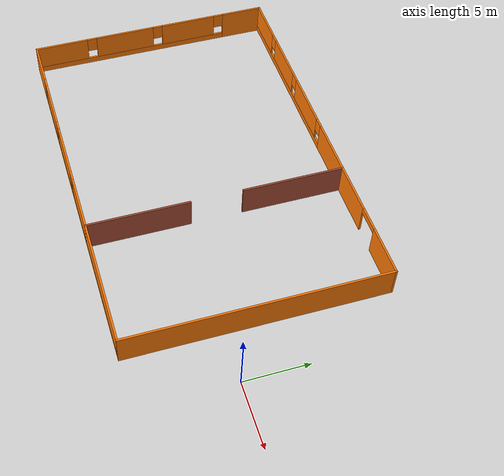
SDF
<?xml version='1.0'?>
<sdf version='1.6'>
  <model name='building'>
    <pose frame=''>-18.8522 2.56894 0 0 -0 0</pose>
    <link name='Wall_10'>
      <collision name='Wall_10_Collision'>
        <geometry>
          <box>
            <size>20 0.15 2.5</size>
          </box>
        </geometry>
        <pose frame=''>0 0 1.25 0 -0 0</pose>
      </collision>
      <visual name='Wall_10_Visual'>
        <pose frame=''>0 0 1.25 0 -0 0</pose>
        <geometry>
          <box>
            <size>20 0.15 2.5</size>
          </box>
        </geometry>
        <material>
          <script>
            <uri>file://media/materials/scripts/gazebo.material</uri>
            <name>Gazebo/Grey</name>
          </script>
          <ambient>0.996078 0.47451 0.0196078 1</ambient>
        </material>
        <meta>
          <layer>0</layer>
        </meta>
      </visual>
      <pose frame=''>14.9252 5.7e-05 0 0 -0 1.5708</pose>
    </link>
    <link name='Wall_11'>
      <pose frame=''>0.000193 9.92506 0 0 -0 3.14159</pose>
      <visual name='Wall_11_Visual_0'>
        <pose frame=''>-13.0218 0 1.25 0 -0 0</pose>
        <geometry>
          <box>
            <size>3.95643 0.15 2.5</size>
          </box>
        </geometry>
        <material>
          <script>
            <uri>file://media/materials/scripts/gazebo.material</uri>
            <name>Gazebo/Grey</name>
          </script>
          <ambient>0.996078 0.47451 0.0196078 1</ambient>
        </material>
        <meta>
          <layer>0</layer>
        </meta>
      </visual>
      <collision name='Wall_11_Collision_0'>
        <geometry>
          <box>
            <size>3.95643 0.15 2.5</size>
          </box>
        </geometry>
        <pose frame=''>-13.0218 0 1.25 0 -0 0</pose>
      </collision>
      <visual name='Wall_11_Visual_1'>
        <pose frame=''>-4.68577 0 1.25 0 -0 0</pose>
        <geometry>
          <box>
            <size>8.71559 0.15 2.5</size>
          </box>
        </geometry>
        <material>
          <script>
            <uri>file://media/materials/scripts/gazebo.material</uri>
            <name>Gazebo/Grey</name>
          </script>
          <ambient>0.996078 0.47451 0.0196078 1</ambient>
        </material>
        <meta>
          <layer>0</layer>
        </meta>
      </visual>
      <collision name='Wall_11_Collision_1'>
        <geometry>
          <box>
            <size>8.71559 0.15 2.5</size>
          </box>
        </geometry>
        <pose frame=''>-4.68577 0 1.25 0 -0 0</pose>
      </collision>
      <visual name='Wall_11_Visual_2'>
        <pose frame=''>7.33601 0 0.25 0 -0 0</pose>
        <geometry>
          <box>
            <size>15.328 0.15 0.5</size>
          </box>
        </geometry>
        <material>
          <script>
            <uri>file://media/materials/scripts/gazebo.material</uri>
            <name>Gazebo/Grey</name>
          </script>
          <ambient>0.996078 0.47451 0.0196078 1</ambient>
        </material>
        <meta>
          <layer>0</layer>
        </meta>
      </visual>
      <collision name='Wall_11_Collision_2'>
        <geometry>
          <box>
            <size>15.328 0.15 0.5</size>
          </box>
        </geometry>
        <pose frame=''>7.33601 0 0.25 0 -0 0</pose>
      </collision>
      <visual name='Wall_11_Visual_3'>
        <pose frame=''>2.81614 0 1.5 0 -0 0</pose>
        <geometry>
          <box>
            <size>4.68825 0.15 2</size>
          </box>
        </geometry>
        <material>
          <script>
            <uri>file://media/materials/scripts/gazebo.material</uri>
            <name>Gazebo/Grey</name>
          </script>
          <ambient>0.996078 0.47451 0.0196078 1</ambient>
        </material>
        <meta>
          <layer>0</layer>
        </meta>
      </visual>
      <collision name='Wall_11_Collision_3'>
        <geometry>
          <box>
            <size>4.68825 0.15 2</size>
          </box>
        </geometry>
        <pose frame=''>2.81614 0 1.5 0 -0 0</pose>
      </collision>
      <visual name='Wall_11_Visual_4'>
        <pose frame=''>8.11613 0 1.5 0 -0 0</pose>
        <geometry>
          <box>
            <size>4.31173 0.15 2</size>
          </box>
        </geometry>
        <material>
          <script>
            <uri>file://media/materials/scripts/gazebo.material</uri>
            <name>Gazebo/Grey</name>
          </script>
          <ambient>0.996078 0.47451 0.0196078 1</ambient>
        </material>
        <meta>
          <layer>0</layer>
        </meta>
      </visual>
      <collision name='Wall_11_Collision_4'>
        <geometry>
          <box>
            <size>4.31173 0.15 2</size>
          </box>
        </geometry>
        <pose frame=''>8.11613 0 1.5 0 -0 0</pose>
      </collision>
      <visual name='Wall_11_Visual_5'>
        <pose frame=''>13.036 0 1.5 0 -0 0</pose>
        <geometry>
          <box>
            <size>3.928 0.15 2</size>
          </box>
        </geometry>
        <material>
          <script>
            <uri>file://media/materials/scripts/gazebo.material</uri>
            <name>Gazebo/Grey</name>
          </script>
          <ambient>0.996078 0.47451 0.0196078 1</ambient>
        </material>
        <meta>
          <layer>0</layer>
        </meta>
      </visual>
      <collision name='Wall_11_Collision_5'>
        <geometry>
          <box>
            <size>3.928 0.15 2</size>
          </box>
        </geometry>
        <pose frame=''>13.036 0 1.5 0 -0 0</pose>
      </collision>
      <visual name='Wall_11_Visual_6'>
        <pose frame=''>0.072021 0 1.9 0 -0 0</pose>
        <geometry>
          <box>
            <size>0.8 0.15 1.2</size>
          </box>
        </geometry>
        <material>
          <script>
            <uri>file://media/materials/scripts/gazebo.material</uri>
            <name>Gazebo/Grey</name>
          </script>
          <ambient>0.996078 0.47451 0.0196078 1</ambient>
        </material>
        <meta>
          <layer>0</layer>
        </meta>
      </visual>
      <collision name='Wall_11_Collision_6'>
        <geometry>
          <box>
            <size>0.8 0.15 1.2</size>
          </box>
        </geometry>
        <pose frame=''>0.072021 0 1.9 0 -0 0</pose>
      </collision>
      <visual name='Wall_11_Visual_7'>
        <pose frame=''>5.56027 0 1.9 0 -0 0</pose>
        <geometry>
          <box>
            <size>0.8 0.15 1.2</size>
          </box>
        </geometry>
        <material>
          <script>
            <uri>file://media/materials/scripts/gazebo.material</uri>
            <name>Gazebo/Grey</name>
          </script>
          <ambient>0.996078 0.47451 0.0196078 1</ambient>
        </material>
        <meta>
          <layer>0</layer>
        </meta>
      </visual>
      <collision name='Wall_11_Collision_7'>
        <geometry>
          <box>
            <size>0.8 0.15 1.2</size>
          </box>
        </geometry>
        <pose frame=''>5.56027 0 1.9 0 -0 0</pose>
      </collision>
      <visual name='Wall_11_Visual_8'>
        <pose frame=''>10.672 0 1.9 0 -0 0</pose>
        <geometry>
          <box>
            <size>0.8 0.15 1.2</size>
          </box>
        </geometry>
        <material>
          <script>
            <uri>file://media/materials/scripts/gazebo.material</uri>
            <name>Gazebo/Grey</name>
          </script>
          <ambient>0.996078 0.47451 0.0196078 1</ambient>
        </material>
        <meta>
          <layer>0</layer>
        </meta>
      </visual>
      <collision name='Wall_11_Collision_8'>
        <geometry>
          <box>
            <size>0.8 0.15 1.2</size>
          </box>
        </geometry>
        <pose frame=''>10.672 0 1.9 0 -0 0</pose>
      </collision>
      <visual name='Wall_11_Visual_9'>
        <pose frame=''>-10.0436 0 2.25 0 -0 0</pose>
        <geometry>
          <box>
            <size>2 0.15 0.5</size>
          </box>
        </geometry>
        <material>
          <script>
            <uri>file://media/materials/scripts/gazebo.material</uri>
            <name>Gazebo/Grey</name>
          </script>
          <ambient>0.996078 0.47451 0.0196078 1</ambient>
        </material>
        <meta>
          <layer>0</layer>
        </meta>
      </visual>
      <collision name='Wall_11_Collision_9'>
        <geometry>
          <box>
            <size>2 0.15 0.5</size>
          </box>
        </geometry>
        <pose frame=''>-10.0436 0 2.25 0 -0 0</pose>
      </collision>
    </link>
    <link name='Wall_13'>
      <collision name='Wall_13_Collision'>
        <geometry>
          <box>
            <size>8 0.15 2.5</size>
          </box>
        </geometry>
        <pose frame=''>0 0 1.25 0 -0 0</pose>
      </collision>
      <visual name='Wall_13_Visual'>
        <pose frame=''>0 0 1.25 0 -0 0</pose>
        <geometry>
          <box>
            <size>8 0.15 2.5</size>
          </box>
        </geometry>
        <material>
          <script>
            <uri>file://media/materials/scripts/gazebo.material</uri>
            <name>Gazebo/Bricks</name>
          </script>
          <ambient>1 1 1 1</ambient>
        </material>
        <meta>
          <layer>0</layer>
        </meta>
      </visual>
      <pose frame=''>4.92519 6.00006 0 0 0 -1.5708</pose>
    </link>
    <link name='Wall_15'>
      <collision name='Wall_15_Collision'>
        <geometry>
          <box>
            <size>8 0.15 2.5</size>
          </box>
        </geometry>
        <pose frame=''>0 0 1.25 0 -0 0</pose>
      </collision>
      <visual name='Wall_15_Visual'>
        <pose frame=''>0 0 1.25 0 -0 0</pose>
        <geometry>
          <box>
            <size>8 0.15 2.5</size>
          </box>
        </geometry>
        <material>
          <script>
            <uri>file://media/materials/scripts/gazebo.material</uri>
            <name>Gazebo/Bricks</name>
          </script>
          <ambient>1 1 1 1</ambient>
        </material>
        <meta>
          <layer>0</layer>
        </meta>
      </visual>
      <pose frame=''>4.92519 -5.99994 0 0 -0 1.5708</pose>
    </link>
    <link name='Wall_8'>
      <pose frame=''>-14.925 -5.7e-05 0 0 0 -1.57078</pose>
      <visual name='Wall_8_Visual_0'>
        <pose frame=''>-8.26318 0 1.25 0 -0 0</pose>
        <geometry>
          <box>
            <size>3.47363 0.15 2.5</size>
          </box>
        </geometry>
        <material>
          <script>
            <uri>file://media/materials/scripts/gazebo.material</uri>
            <name>Gazebo/Grey</name>
          </script>
          <ambient>0.996078 0.47451 0.0196078 1</ambient>
        </material>
        <meta>
          <layer>0</layer>
        </meta>
      </visual>
      <collision name='Wall_8_Collision_0'>
        <geometry>
          <box>
            <size>3.47363 0.15 2.5</size>
          </box>
        </geometry>
        <pose frame=''>-8.26318 0 1.25 0 -0 0</pose>
      </collision>
      <visual name='Wall_8_Visual_1'>
        <pose frame=''>1.73682 0 0.25 0 -0 0</pose>
        <geometry>
          <box>
            <size>16.5264 0.15 0.5</size>
          </box>
        </geometry>
        <material>
          <script>
            <uri>file://media/materials/scripts/gazebo.material</uri>
            <name>Gazebo/Grey</name>
          </script>
          <ambient>0.996078 0.47451 0.0196078 1</ambient>
        </material>
        <meta>
          <layer>0</layer>
        </meta>
      </visual>
      <collision name='Wall_8_Collision_1'>
        <geometry>
          <box>
            <size>16.5264 0.15 0.5</size>
          </box>
        </geometry>
        <pose frame=''>1.73682 0 0.25 0 -0 0</pose>
      </collision>
      <visual name='Wall_8_Visual_2'>
        <pose frame=''>-3.38224 0 1.5 0 -0 0</pose>
        <geometry>
          <box>
            <size>4.68825 0.15 2</size>
          </box>
        </geometry>
        <material>
          <script>
            <uri>file://media/materials/scripts/gazebo.material</uri>
            <name>Gazebo/Grey</name>
          </script>
          <ambient>0.996078 0.47451 0.0196078 1</ambient>
        </material>
        <meta>
          <layer>0</layer>
        </meta>
      </visual>
      <collision name='Wall_8_Collision_2'>
        <geometry>
          <box>
            <size>4.68825 0.15 2</size>
          </box>
        </geometry>
        <pose frame=''>-3.38224 0 1.5 0 -0 0</pose>
      </collision>
      <visual name='Wall_8_Visual_3'>
        <pose frame=''>2.26742 0 1.5 0 -0 0</pose>
        <geometry>
          <box>
            <size>5.01108 0.15 2</size>
          </box>
        </geometry>
        <material>
          <script>
            <uri>file://media/materials/scripts/gazebo.material</uri>
            <name>Gazebo/Grey</name>
          </script>
          <ambient>0.996078 0.47451 0.0196078 1</ambient>
        </material>
        <meta>
          <layer>0</layer>
        </meta>
      </visual>
      <collision name='Wall_8_Collision_3'>
        <geometry>
          <box>
            <size>5.01108 0.15 2</size>
          </box>
        </geometry>
        <pose frame=''>2.26742 0 1.5 0 -0 0</pose>
      </collision>
      <visual name='Wall_8_Visual_4'>
        <pose frame=''>7.78648 0 1.5 0 -0 0</pose>
        <geometry>
          <box>
            <size>4.42704 0.15 2</size>
          </box>
        </geometry>
        <material>
          <script>
            <uri>file://media/materials/scripts/gazebo.material</uri>
            <name>Gazebo/Grey</name>
          </script>
          <ambient>0.996078 0.47451 0.0196078 1</ambient>
        </material>
        <meta>
          <layer>0</layer>
        </meta>
      </visual>
      <collision name='Wall_8_Collision_4'>
        <geometry>
          <box>
            <size>4.42704 0.15 2</size>
          </box>
        </geometry>
        <pose frame=''>7.78648 0 1.5 0 -0 0</pose>
      </collision>
      <visual name='Wall_8_Visual_5'>
        <pose frame=''>-6.12637 0 1.9 0 -0 0</pose>
        <geometry>
          <box>
            <size>0.8 0.15 1.2</size>
          </box>
        </geometry>
        <material>
          <script>
            <uri>file://media/materials/scripts/gazebo.material</uri>
            <name>Gazebo/Grey</name>
          </script>
          <ambient>0.996078 0.47451 0.0196078 1</ambient>
        </material>
        <meta>
          <layer>0</layer>
        </meta>
      </visual>
      <collision name='Wall_8_Collision_5'>
        <geometry>
          <box>
            <size>0.8 0.15 1.2</size>
          </box>
        </geometry>
        <pose frame=''>-6.12637 0 1.9 0 -0 0</pose>
      </collision>
      <visual name='Wall_8_Visual_6'>
        <pose frame=''>-0.63812 0 1.9 0 -0 0</pose>
        <geometry>
          <box>
            <size>0.8 0.15 1.2</size>
          </box>
        </geometry>
        <material>
          <script>
            <uri>file://media/materials/scripts/gazebo.material</uri>
            <name>Gazebo/Grey</name>
          </script>
          <ambient>0.996078 0.47451 0.0196078 1</ambient>
        </material>
        <meta>
          <layer>0</layer>
        </meta>
      </visual>
      <collision name='Wall_8_Collision_6'>
        <geometry>
          <box>
            <size>0.8 0.15 1.2</size>
          </box>
        </geometry>
        <pose frame=''>-0.63812 0 1.9 0 -0 0</pose>
      </collision>
      <visual name='Wall_8_Visual_7'>
        <pose frame=''>5.17296 0 1.9 0 -0 0</pose>
        <geometry>
          <box>
            <size>0.8 0.15 1.2</size>
          </box>
        </geometry>
        <material>
          <script>
            <uri>file://media/materials/scripts/gazebo.material</uri>
            <name>Gazebo/Grey</name>
          </script>
          <ambient>0.996078 0.47451 0.0196078 1</ambient>
        </material>
        <meta>
          <layer>0</layer>
        </meta>
      </visual>
      <collision name='Wall_8_Collision_7'>
        <geometry>
          <box>
            <size>0.8 0.15 1.2</size>
          </box>
        </geometry>
        <pose frame=''>5.17296 0 1.9 0 -0 0</pose>
      </collision>
    </link>
    <link name='Wall_9'>
      <pose frame=''>0.000193 -9.92494 0 0 -0 0</pose>
      <visual name='Wall_9_Visual_0'>
        <pose frame=''>-13.036 0 1.25 0 -0 0</pose>
        <geometry>
          <box>
            <size>3.928 0.15 2.5</size>
          </box>
        </geometry>
        <material>
          <script>
            <uri>file://media/materials/scripts/gazebo.material</uri>
            <name>Gazebo/Grey</name>
          </script>
          <ambient>0.996078 0.47451 0.0196078 1</ambient>
        </material>
        <meta>
          <layer>0</layer>
        </meta>
      </visual>
      <collision name='Wall_9_Collision_0'>
        <geometry>
          <box>
            <size>3.928 0.15 2.5</size>
          </box>
        </geometry>
        <pose frame=''>-13.036 0 1.25 0 -0 0</pose>
      </collision>
      <visual name='Wall_9_Visual_1'>
        <pose frame=''>1.964 0 0.25 0 -0 0</pose>
        <geometry>
          <box>
            <size>26.072 0.15 0.5</size>
          </box>
        </geometry>
        <material>
          <script>
            <uri>file://media/materials/scripts/gazebo.material</uri>
            <name>Gazebo/Grey</name>
          </script>
          <ambient>0.996078 0.47451 0.0196078 1</ambient>
        </material>
        <meta>
          <layer>0</layer>
        </meta>
      </visual>
      <collision name='Wall_9_Collision_1'>
        <geometry>
          <box>
            <size>26.072 0.15 0.5</size>
          </box>
        </geometry>
        <pose frame=''>1.964 0 0.25 0 -0 0</pose>
      </collision>
      <visual name='Wall_9_Visual_2'>
        <pose frame=''>-8.116 0 1.5 0 -0 0</pose>
        <geometry>
          <box>
            <size>4.312 0.15 2</size>
          </box>
        </geometry>
        <material>
          <script>
            <uri>file://media/materials/scripts/gazebo.material</uri>
            <name>Gazebo/Grey</name>
          </script>
          <ambient>0.996078 0.47451 0.0196078 1</ambient>
        </material>
        <meta>
          <layer>0</layer>
        </meta>
      </visual>
      <collision name='Wall_9_Collision_2'>
        <geometry>
          <box>
            <size>4.312 0.15 2</size>
          </box>
        </geometry>
        <pose frame=''>-8.116 0 1.5 0 -0 0</pose>
      </collision>
      <visual name='Wall_9_Visual_3'>
        <pose frame=''>-2.816 0 1.5 0 -0 0</pose>
        <geometry>
          <box>
            <size>4.688 0.15 2</size>
          </box>
        </geometry>
        <material>
          <script>
            <uri>file://media/materials/scripts/gazebo.material</uri>
            <name>Gazebo/Grey</name>
          </script>
          <ambient>0.996078 0.47451 0.0196078 1</ambient>
        </material>
        <meta>
          <layer>0</layer>
        </meta>
      </visual>
      <collision name='Wall_9_Collision_3'>
        <geometry>
          <box>
            <size>4.688 0.15 2</size>
          </box>
        </geometry>
        <pose frame=''>-2.816 0 1.5 0 -0 0</pose>
      </collision>
      <visual name='Wall_9_Visual_4'>
        <pose frame=''>7.664 0 1.5 0 -0 0</pose>
        <geometry>
          <box>
            <size>14.672 0.15 2</size>
          </box>
        </geometry>
        <material>
          <script>
            <uri>file://media/materials/scripts/gazebo.material</uri>
            <name>Gazebo/Grey</name>
          </script>
          <ambient>0.996078 0.47451 0.0196078 1</ambient>
        </material>
        <meta>
          <layer>0</layer>
        </meta>
      </visual>
      <collision name='Wall_9_Collision_4'>
        <geometry>
          <box>
            <size>14.672 0.15 2</size>
          </box>
        </geometry>
        <pose frame=''>7.664 0 1.5 0 -0 0</pose>
      </collision>
      <visual name='Wall_9_Visual_5'>
        <pose frame=''>-10.672 0 1.9 0 -0 0</pose>
        <geometry>
          <box>
            <size>0.8 0.15 1.2</size>
          </box>
        </geometry>
        <material>
          <script>
            <uri>file://media/materials/scripts/gazebo.material</uri>
            <name>Gazebo/Grey</name>
          </script>
          <ambient>0.996078 0.47451 0.0196078 1</ambient>
        </material>
        <meta>
          <layer>0</layer>
        </meta>
      </visual>
      <collision name='Wall_9_Collision_5'>
        <geometry>
          <box>
            <size>0.8 0.15 1.2</size>
          </box>
        </geometry>
        <pose frame=''>-10.672 0 1.9 0 -0 0</pose>
      </collision>
      <visual name='Wall_9_Visual_6'>
        <pose frame=''>-5.56 0 1.9 0 -0 0</pose>
        <geometry>
          <box>
            <size>0.8 0.15 1.2</size>
          </box>
        </geometry>
        <material>
          <script>
            <uri>file://media/materials/scripts/gazebo.material</uri>
            <name>Gazebo/Grey</name>
          </script>
          <ambient>0.996078 0.47451 0.0196078 1</ambient>
        </material>
        <meta>
          <layer>0</layer>
        </meta>
      </visual>
      <collision name='Wall_9_Collision_6'>
        <geometry>
          <box>
            <size>0.8 0.15 1.2</size>
          </box>
        </geometry>
        <pose frame=''>-5.56 0 1.9 0 -0 0</pose>
      </collision>
      <visual name='Wall_9_Visual_7'>
        <pose frame=''>-0.072001 0 1.9 0 -0 0</pose>
        <geometry>
          <box>
            <size>0.8 0.15 1.2</size>
          </box>
        </geometry>
        <material>
          <script>
            <uri>file://media/materials/scripts/gazebo.material</uri>
            <name>Gazebo/Grey</name>
          </script>
          <ambient>0.996078 0.47451 0.0196078 1</ambient>
        </material>
        <meta>
          <layer>0</layer>
        </meta>
      </visual>
      <collision name='Wall_9_Collision_7'>
        <geometry>
          <box>
            <size>0.8 0.15 1.2</size>
          </box>
        </geometry>
        <pose frame=''>-0.072001 0 1.9 0 -0 0</pose>
      </collision>
    </link>
    <static>1</static>
  </model>
</sdf>
